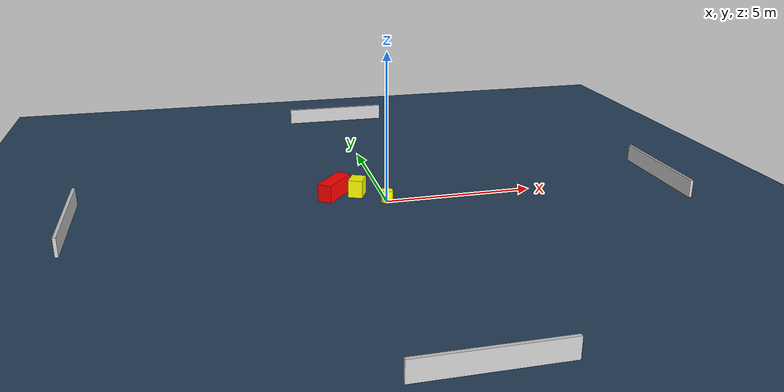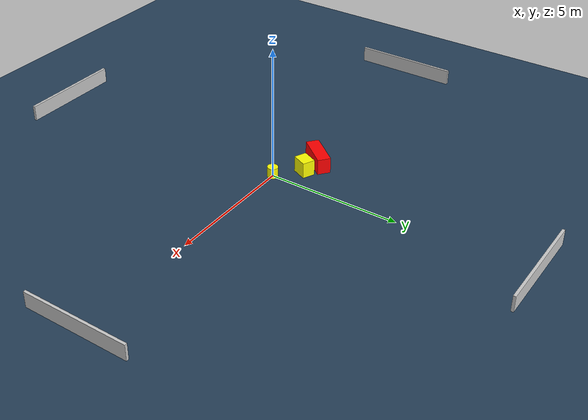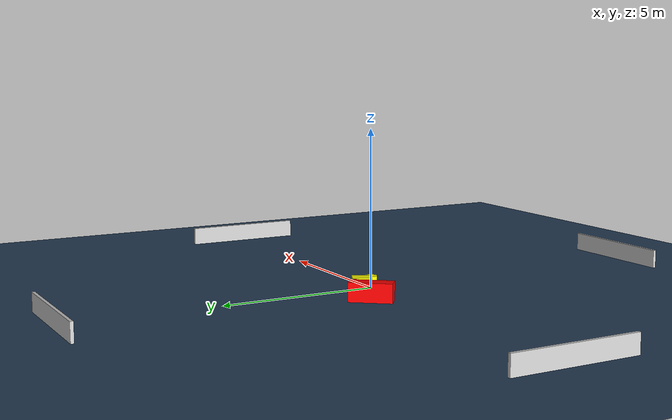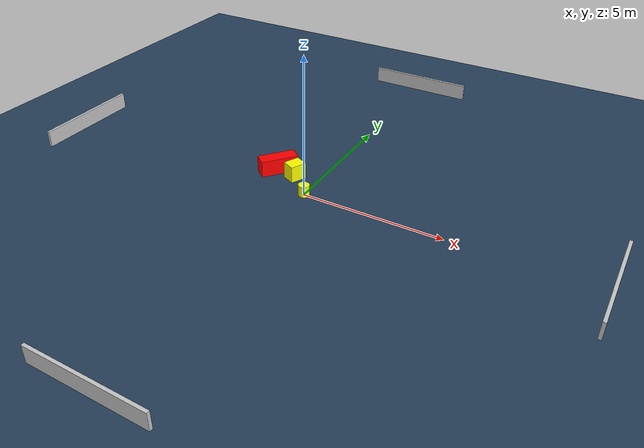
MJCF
<?xml version="1.0" ?>
<mujoco model="generated_environment">
  <option timestep="0.01" integrator="RK4" cone="elliptic"/>
  <default>
    <geom density="1"/>
  </default>
  <asset>
    <texture builtin="gradient" height="3072" name="skybox" rgb1="0.3 0.5 0.7" rgb2="0 0 0" type="skybox" width="512"/>
    <texture builtin="checker" height="300" name="groundplane" rgb1="0.2 0.3 0.4" rgb2="0.1 0.2 0.3" type="2d" width="300"/>
    <material name="groundplane" reflectance="0.2" texrepeat="5 5" texture="groundplane"/>
  </asset>
  <worldbody>
    <light dir="0 0 -1" directional="true" pos="0 0 1.5"/>
    <geom condim="3" friction="0.5 0.005 0.001" material="groundplane" name="floor" pos="0 0 0" size="0 0 0.05" type="plane"/>
    <body name="walls">
      <geom name="wall_1" condim="4" pos="-10.0 0.0 0.3" rgba="0.800000011920929 0.800000011920929 0.800000011920929 1.0" size="0.05 2.0 0.3" type="box"/>
      <geom name="wall_2" condim="4" pos="10.0 0.0 0.3" rgba="0.800000011920929 0.800000011920929 0.800000011920929 1.0" size="0.05 2.0 0.3" type="box"/>
      <geom name="wall_3" condim="4" pos="0.0 -10.0 0.3" rgba="0.800000011920929 0.800000011920929 0.800000011920929 1.0" size="2.0 0.05 0.3" type="box"/>
      <geom name="wall_4" condim="4" pos="0.0 10.0 0.3" rgba="0.800000011920929 0.800000011920929 0.800000011920929 1.0" size="2.0 0.05 0.3" type="box"/>
    </body>
    <body name="robot">
      <joint name="joint_x" type="slide" pos="0 0 0" axis="1 0 0"/>
      <joint name="joint_y" type="slide" pos="0 0 0" axis="0 1 0"/>
      <geom name="robot" type="cylinder" pos="0.0 0.0 0.2" size="0.2 0.2 0.0" mass="5.0" friction="1.0 0.005 0.0001" condim="4" rgba="1.0 1.0 0.0 1.0"/>
    </body>
    <body name="obstacle_1_movable">
      <geom name="obstacle_1_movable" condim="4" pos="-0.8413935929899057 0.8032379132299268 0.3" euler="0 0 65.38189118270063" friction="0.0 0.005 0.001" rgba="1.0 1.0 0.0 1.0" size="0.29524132547414345 0.2392512629170782 0.3" type="box" mass="0.1"/>
      <joint type="free"/>
    </body>
    <body name="obstacle_2_static">
      <geom name="obstacle_2_static" condim="4" pos="-1.6061162168557943 0.8979500906475589 0.3" euler="0 0 141.17778709063404" friction="0.0 0.005 0.001" rgba="1.0 0.0 0.0 1.0" size="0.24643137748927035 0.6740675039655685 0.3" type="box"/>
    </body>
  </worldbody>
  <actuator>
    <motor name="actuator_x" joint="joint_x" gear="1" ctrlrange="-1 1"/>
    <motor name="actuator_y" joint="joint_y" gear="1" ctrlrange="-1 1"/>
  </actuator>
</mujoco>
